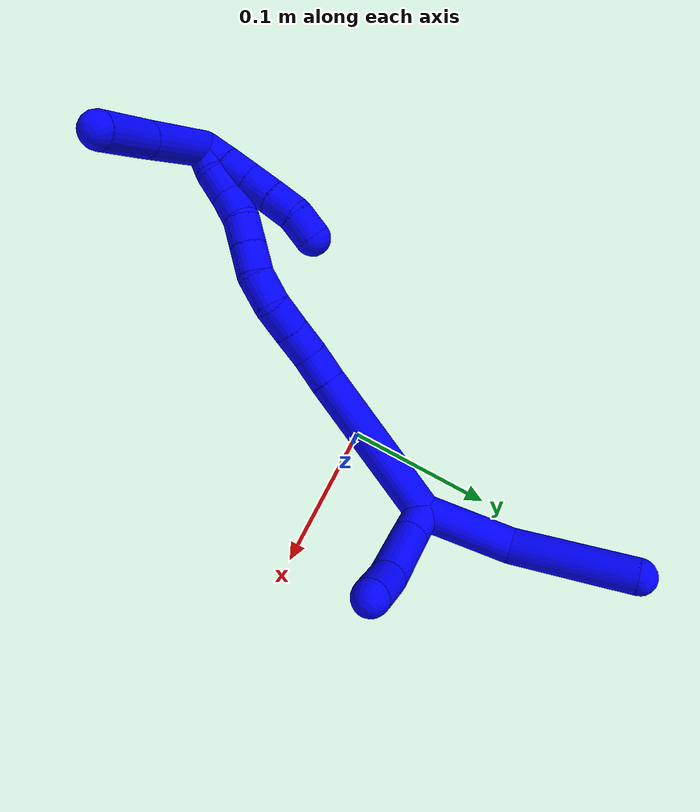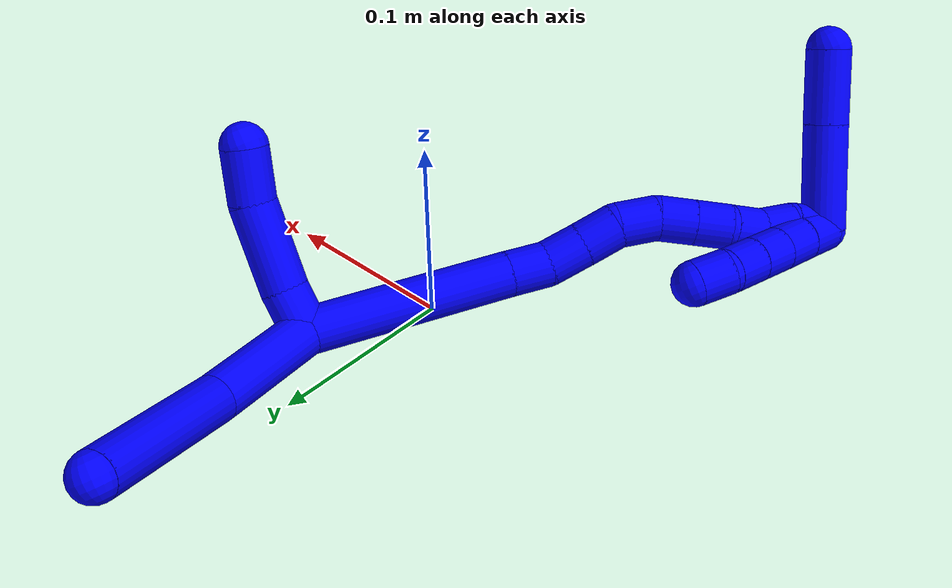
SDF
<sdf version="1.7">
 <world name="default">
  <plugin name="TubeGeneratorPlugin" filename="libtube_generator_plugin.so"/>
  <model name="photoneo_s_sensor">
   <static>1</static>
   <pose>0 0 2 1.57079 1.57079 3.14159</pose>
   <link name="link">
    <inertial><mass>0.1</mass></inertial>
    <sensor name="sensor" type="depth">
     <update_rate>30</update_rate>
     <camera>
      <horizontal_fov>1.22</horizontal_fov>
      <image><width>1920</width><height>1200</height><format>B8G8R8</format></image>
      <clip><near>0.1</near><far>4</far></clip>
      <depth_camera><output>points</output></depth_camera>
     </camera>
     <plugin name="camera_plugin" filename="libgazebo_ros_depth_camera.so">
      <baseline>0.2</baseline>
      <alwaysOn>1</alwaysOn>
      <updateRate>0.0</updateRate>
      <cameraName>camera_ir</cameraName>
      <imageTopicName>/camera/color/image_raw</imageTopicName>
      <cameraInfoTopicName>/camera/color/camera_info</cameraInfoTopicName>
      <depthImageTopicName>/camera/depth/image_raw</depthImageTopicName>
      <depthImageCameraInfoTopicName>/camera/depth/camera_info</depthImageCameraInfoTopicName>
      <pointCloudTopicName>/camera/depth/points</pointCloudTopicName>
      <frameName>fr_optical</frameName>
      <pointCloudCutoff>0.1</pointCloudCutoff>
      <pointCloudCutoffMax>2.0</pointCloudCutoffMax>
      <distortionK1>0</distortionK1>
      <distortionK2>0</distortionK2>
      <distortionK3>0</distortionK3>
      <distortionT1>0</distortionT1>
      <distortionT2>0</distortionT2>
      <CxPrime>0</CxPrime>
      <Cx>0</Cx>
      <Cy>0</Cy>
      <focalLength>0</focalLength>
      <hackBaseline>0</hackBaseline>
     </plugin>
    </sensor>
   </link>
  </model>
  <gravity>0 0 -9.8</gravity>
  <magnetic_field>6e-06 2.3e-05 -4.2e-05</magnetic_field>
  <atmosphere type="adiabatic"/>
  <physics name="default_physics" default="0" type="ode">
   <max_step_size>0.003</max_step_size>
   <real_time_factor>1</real_time_factor>
   <real_time_update_rate>1000</real_time_update_rate>
   <max_contacts>10000</max_contacts>
   <ode>
    <solver>
     <type>quick</type>
     <iters>100</iters>
     <sor>1.3</sor>
     <use_dynamic_moi_rescaling>0</use_dynamic_moi_rescaling>
    </solver>
    <constraints>
     <contact_max_correcting_vel>0</contact_max_correcting_vel>
     <contact_surface_layer>0.001</contact_surface_layer>
     <cfm>0</cfm>
     <erp>0.2</erp>
    </constraints>
   </ode>
  </physics>
  <scene><ambient>0.4 0.4 0.4 1</ambient><background>0.7 0.7 0.7 1</background><shadows>0</shadows></scene>
  <audio><device>default</device></audio>
  <spherical_coordinates>
   <surface_model>EARTH_WGS84</surface_model>
   <latitude_deg>0</latitude_deg>
   <longitude_deg>0</longitude_deg>
   <elevation>0</elevation>
   <heading_deg>0</heading_deg>
  </spherical_coordinates>
  <model name="bin">
   <static>1</static>
   <link name="bottom">
    <collision name="collision-bottom">
     <pose>0 0 -0.01 0 -0 0</pose>
     <geometry><box><size>0.8 0.6 0.02</size></box></geometry>
     <surface>
      <friction><ode><mu>100</mu><mu2>100</mu2></ode></friction>
      <contact><collide_bitmask>65535</collide_bitmask></contact>
     </surface>
    </collision>
   </link>
   <link name="west_wall">
    <collision name="collision-west_wall">
     <pose>-0.41 0 0.1 0 -0 0</pose>
     <geometry><box><size>0.02 0.6 0.2</size></box></geometry>
     <surface>
      <friction><ode><mu>100</mu><mu2>100</mu2></ode></friction>
      <contact><collide_bitmask>65535</collide_bitmask></contact>
     </surface>
    </collision>
   </link>
   <link name="east_wall">
    <collision name="collision-east_wall">
     <pose>0.41 0 0.1 0 -0 0</pose>
     <geometry><box><size>0.02 0.6 0.2</size></box></geometry>
     <surface>
      <friction><ode><mu>100</mu><mu2>100</mu2></ode></friction>
      <contact><collide_bitmask>65535</collide_bitmask></contact>
     </surface>
    </collision>
   </link>
   <link name="south_wall">
    <collision name="collision-south_wall">
     <pose>0 -0.31 0.1 0 -0 0</pose>
     <geometry><box><size>0.8 0.02 0.2</size></box></geometry>
     <surface>
      <friction><ode><mu>100</mu><mu2>100</mu2></ode></friction>
      <contact><collide_bitmask>65535</collide_bitmask></contact>
     </surface>
    </collision>
   </link>
   <link name="north_wall">
    <collision name="collision-north_wall">
     <pose>0 0.31 0.1 0 -0 0</pose>
     <geometry><box><size>0.8 0.02 0.2</size></box></geometry>
     <surface>
      <friction><ode><mu>100</mu><mu2>100</mu2></ode></friction>
      <contact><collide_bitmask>65535</collide_bitmask></contact>
     </surface>
    </collision>
   </link>
  </model>
  <model name="1">
   <static>0</static>
   <link name="1">
    <collision name="collision-cylinder-e_1_2_8">
     <pose>0.029472 0.011517 0.004921 -1.16701 1.16896 -0.823605</pose>
     <geometry><cylinder><radius>0.0125</radius><length>0.064046</length></cylinder></geometry>
     <surface>
      <friction><ode><mu>1.16</mu><mu2>1.16</mu2><slip1>0</slip1><slip2>0</slip2></ode></friction>
      <contact><ode><kp>1e+06</kp><kd>1</kd><max_vel>0</max_vel><min_depth>0.001</min_depth></ode></contact>
     </surface>
    </collision>
    <visual name="visual-cylinder-e_1_2_8">
     <pose>0.029472 0.011517 0.004921 -1.16701 1.16896 -0.823605</pose>
     <geometry><cylinder><radius>0.0125</radius><length>0.064046</length></cylinder></geometry>
     <material><ambient>0 0 1 1</ambient></material>
    </visual>
    <collision name="collision-cylinder-e_2_8_6">
     <pose>0.101749 0.026301 0.011886 -1.01152 1.48102 -0.937175</pose>
     <geometry><cylinder><radius>0.0125</radius><length>0.085954</length></cylinder></geometry>
     <surface>
      <friction><ode><mu>1.16</mu><mu2>1.16</mu2><slip1>0</slip1><slip2>0</slip2></ode></friction>
      <contact><ode><kp>1e+06</kp><kd>1</kd><max_vel>0</max_vel><min_depth>0.001</min_depth></ode></contact>
     </surface>
    </collision>
    <visual name="visual-cylinder-e_2_8_6">
     <pose>0.101749 0.026301 0.011886 -1.01152 1.48102 -0.937175</pose>
     <geometry><cylinder><radius>0.0125</radius><length>0.085954</length></cylinder></geometry>
     <material><ambient>0 0 1 1</ambient></material>
    </visual>
    <collision name="collision-cylinder-e_1_2_9">
     <pose>-0.000307 0.000976 -0.011998 -3.06039 -0.025484 0.607926</pose>
     <geometry><cylinder><radius>0.0125</radius><length>0.024083</length></cylinder></geometry>
     <surface>
      <friction><ode><mu>1.16</mu><mu2>1.16</mu2><slip1>0</slip1><slip2>0</slip2></ode></friction>
      <contact><ode><kp>1e+06</kp><kd>1</kd><max_vel>0</max_vel><min_depth>0.001</min_depth></ode></contact>
     </surface>
    </collision>
    <visual name="visual-cylinder-e_1_2_9">
     <pose>-0.000307 0.000976 -0.011998 -3.06039 -0.025484 0.607926</pose>
     <geometry><cylinder><radius>0.0125</radius><length>0.024083</length></cylinder></geometry>
     <material><ambient>0 0 1 1</ambient></material>
    </visual>
    <collision name="collision-cylinder-e_2_9_10">
     <pose>0.001594 -0.00124 -0.047315 3.00552 0.093508 1.20337</pose>
     <geometry><cylinder><radius>0.0125</radius><length>0.04728</length></cylinder></geometry>
     <surface>
      <friction><ode><mu>1.16</mu><mu2>1.16</mu2><slip1>0</slip1><slip2>0</slip2></ode></friction>
      <contact><ode><kp>1e+06</kp><kd>1</kd><max_vel>0</max_vel><min_depth>0.001</min_depth></ode></contact>
     </surface>
    </collision>
    <visual name="visual-cylinder-e_2_9_10">
     <pose>0.001594 -0.00124 -0.047315 3.00552 0.093508 1.20337</pose>
     <geometry><cylinder><radius>0.0125</radius><length>0.04728</length></cylinder></geometry>
     <material><ambient>0 0 1 1</ambient></material>
    </visual>
    <collision name="collision-cylinder-e_3_10_5">
     <pose>0.004698 -0.009373 -0.084043 2.78858 0.062701 0.348099</pose>
     <geometry><cylinder><radius>0.0125</radius><length>0.028637</length></cylinder></geometry>
     <surface>
      <friction><ode><mu>1.16</mu><mu2>1.16</mu2><slip1>0</slip1><slip2>0</slip2></ode></friction>
      <contact><ode><kp>1e+06</kp><kd>1</kd><max_vel>0</max_vel><min_depth>0.001</min_depth></ode></contact>
     </surface>
    </collision>
    <visual name="visual-cylinder-e_3_10_5">
     <pose>0.004698 -0.009373 -0.084043 2.78858 0.062701 0.348099</pose>
     <geometry><cylinder><radius>0.0125</radius><length>0.028637</length></cylinder></geometry>
     <material><ambient>0 0 1 1</ambient></material>
    </visual>
    <collision name="collision-cylinder-e_1_2_11">
     <pose>-0.035245 -0.042109 0.008005 1.38294 -0.688163 -0.576731</pose>
     <geometry><cylinder><radius>0.0125</radius><length>0.110986</length></cylinder></geometry>
     <surface>
      <friction><ode><mu>1.16</mu><mu2>1.16</mu2><slip1>0</slip1><slip2>0</slip2></ode></friction>
      <contact><ode><kp>1e+06</kp><kd>1</kd><max_vel>0</max_vel><min_depth>0.001</min_depth></ode></contact>
     </surface>
    </collision>
    <visual name="visual-cylinder-e_1_2_11">
     <pose>-0.035245 -0.042109 0.008005 1.38294 -0.688163 -0.576731</pose>
     <geometry><cylinder><radius>0.0125</radius><length>0.110986</length></cylinder></geometry>
     <material><ambient>0 0 1 1</ambient></material>
    </visual>
    <collision name="collision-cylinder-e_2_11_12">
     <pose>-0.077303 -0.092903 0.017852 1.36184 -0.654611 -0.536866</pose>
     <geometry><cylinder><radius>0.0125</radius><length>0.022381</length></cylinder></geometry>
     <surface>
      <friction><ode><mu>1.16</mu><mu2>1.16</mu2><slip1>0</slip1><slip2>0</slip2></ode></friction>
      <contact><ode><kp>1e+06</kp><kd>1</kd><max_vel>0</max_vel><min_depth>0.001</min_depth></ode></contact>
     </surface>
    </collision>
    <visual name="visual-cylinder-e_2_11_12">
     <pose>-0.077303 -0.092903 0.017852 1.36184 -0.654611 -0.536866</pose>
     <geometry><cylinder><radius>0.0125</radius><length>0.022381</length></cylinder></geometry>
     <material><ambient>0 0 1 1</ambient></material>
    </visual>
    <collision name="collision-cylinder-e_3_12_13">
     <pose>-0.089566 -0.110848 0.018807 1.66614 -0.529944 -0.580233</pose>
     <geometry><cylinder><radius>0.0125</radius><length>0.021562</length></cylinder></geometry>
     <surface>
      <friction><ode><mu>1.16</mu><mu2>1.16</mu2><slip1>0</slip1><slip2>0</slip2></ode></friction>
      <contact><ode><kp>1e+06</kp><kd>1</kd><max_vel>0</max_vel><min_depth>0.001</min_depth></ode></contact>
     </surface>
    </collision>
    <visual name="visual-cylinder-e_3_12_13">
     <pose>-0.089566 -0.110848 0.018807 1.66614 -0.529944 -0.580233</pose>
     <geometry><cylinder><radius>0.0125</radius><length>0.021562</length></cylinder></geometry>
     <material><ambient>0 0 1 1</ambient></material>
    </visual>
    <collision name="collision-cylinder-e_4_13_14">
     <pose>-0.10009 -0.129554 0.016834 1.68541 -0.490205 -0.547092</pose>
     <geometry><cylinder><radius>0.0125</radius><length>0.021556</length></cylinder></geometry>
     <surface>
      <friction><ode><mu>1.16</mu><mu2>1.16</mu2><slip1>0</slip1><slip2>0</slip2></ode></friction>
      <contact><ode><kp>1e+06</kp><kd>1</kd><max_vel>0</max_vel><min_depth>0.001</min_depth></ode></contact>
     </surface>
    </collision>
    <visual name="visual-cylinder-e_4_13_14">
     <pose>-0.10009 -0.129554 0.016834 1.68541 -0.490205 -0.547092</pose>
     <geometry><cylinder><radius>0.0125</radius><length>0.021556</length></cylinder></geometry>
     <material><ambient>0 0 1 1</ambient></material>
    </visual>
    <collision name="collision-cylinder-e_5_14_15">
     <pose>-0.111352 -0.148252 0.018298 1.30176 -0.57263 -0.441138</pose>
     <geometry><cylinder><radius>0.0125</radius><length>0.022838</length></cylinder></geometry>
     <surface>
      <friction><ode><mu>1.16</mu><mu2>1.16</mu2><slip1>0</slip1><slip2>0</slip2></ode></friction>
      <contact><ode><kp>1e+06</kp><kd>1</kd><max_vel>0</max_vel><min_depth>0.001</min_depth></ode></contact>
     </surface>
    </collision>
    <visual name="visual-cylinder-e_5_14_15">
     <pose>-0.111352 -0.148252 0.018298 1.30176 -0.57263 -0.441138</pose>
     <geometry><cylinder><radius>0.0125</radius><length>0.022838</length></cylinder></geometry>
     <material><ambient>0 0 1 1</ambient></material>
    </visual>
    <collision name="collision-cylinder-e_6_15_16">
     <pose>-0.122018 -0.165199 0.026009 0.980098 -0.450303 -0.243153</pose>
     <geometry><cylinder><radius>0.0125</radius><length>0.02058</length></cylinder></geometry>
     <surface>
      <friction><ode><mu>1.16</mu><mu2>1.16</mu2><slip1>0</slip1><slip2>0</slip2></ode></friction>
      <contact><ode><kp>1e+06</kp><kd>1</kd><max_vel>0</max_vel><min_depth>0.001</min_depth></ode></contact>
     </surface>
    </collision>
    <visual name="visual-cylinder-e_6_15_16">
     <pose>-0.122018 -0.165199 0.026009 0.980098 -0.450303 -0.243153</pose>
     <geometry><cylinder><radius>0.0125</radius><length>0.02058</length></cylinder></geometry>
     <material><ambient>0 0 1 1</ambient></material>
    </visual>
    <collision name="collision-cylinder-e_7_16_17">
     <pose>-0.130814 -0.180381 0.03624 0.975407 -0.445456 -0.239129</pose>
     <geometry><cylinder><radius>0.0125</radius><length>0.020044</length></cylinder></geometry>
     <surface>
      <friction><ode><mu>1.16</mu><mu2>1.16</mu2><slip1>0</slip1><slip2>0</slip2></ode></friction>
      <contact><ode><kp>1e+06</kp><kd>1</kd><max_vel>0</max_vel><min_depth>0.001</min_depth></ode></contact>
     </surface>
    </collision>
    <visual name="visual-cylinder-e_7_16_17">
     <pose>-0.130814 -0.180381 0.03624 0.975407 -0.445456 -0.239129</pose>
     <geometry><cylinder><radius>0.0125</radius><length>0.020044</length></cylinder></geometry>
     <material><ambient>0 0 1 1</ambient></material>
    </visual>
    <collision name="collision-cylinder-e_8_17_18">
     <pose>-0.141779 -0.193617 0.046101 0.876214 -0.726333 -0.352366</pose>
     <geometry><cylinder><radius>0.0125</radius><length>0.020016</length></cylinder></geometry>
     <surface>
      <friction><ode><mu>1.16</mu><mu2>1.16</mu2><slip1>0</slip1><slip2>0</slip2></ode></friction>
      <contact><ode><kp>1e+06</kp><kd>1</kd><max_vel>0</max_vel><min_depth>0.001</min_depth></ode></contact>
     </surface>
    </collision>
    <visual name="visual-cylinder-e_8_17_18">
     <pose>-0.141779 -0.193617 0.046101 0.876214 -0.726333 -0.352366</pose>
     <geometry><cylinder><radius>0.0125</radius><length>0.020016</length></cylinder></geometry>
     <material><ambient>0 0 1 1</ambient></material>
    </visual>
    <collision name="collision-cylinder-e_9_18_19">
     <pose>-0.15457 -0.206925 0.053229 1.27083 -0.660273 -0.495043</pose>
     <geometry><cylinder><radius>0.0125</radius><length>0.020035</length></cylinder></geometry>
     <surface>
      <friction><ode><mu>1.16</mu><mu2>1.16</mu2><slip1>0</slip1><slip2>0</slip2></ode></friction>
      <contact><ode><kp>1e+06</kp><kd>1</kd><max_vel>0</max_vel><min_depth>0.001</min_depth></ode></contact>
     </surface>
    </collision>
    <visual name="visual-cylinder-e_9_18_19">
     <pose>-0.15457 -0.206925 0.053229 1.27083 -0.660273 -0.495043</pose>
     <geometry><cylinder><radius>0.0125</radius><length>0.020035</length></cylinder></geometry>
     <material><ambient>0 0 1 1</ambient></material>
    </visual>
    <collision name="collision-cylinder-e_10_19_1">
     <pose>-0.166531 -0.221009 0.060424 0.930858 -0.620804 -0.319456</pose>
     <geometry><cylinder><radius>0.0125</radius><length>0.020002</length></cylinder></geometry>
     <surface>
      <friction><ode><mu>1.16</mu><mu2>1.16</mu2><slip1>0</slip1><slip2>0</slip2></ode></friction>
      <contact><ode><kp>1e+06</kp><kd>1</kd><max_vel>0</max_vel><min_depth>0.001</min_depth></ode></contact>
     </surface>
    </collision>
    <visual name="visual-cylinder-e_10_19_1">
     <pose>-0.166531 -0.221009 0.060424 0.930858 -0.620804 -0.319456</pose>
     <geometry><cylinder><radius>0.0125</radius><length>0.020002</length></cylinder></geometry>
     <material><ambient>0 0 1 1</ambient></material>
    </visual>
    <collision name="collision-cylinder-e_1_1_20">
     <pose>-0.173921 -0.239018 0.038218 2.7403 -0.053432 -0.261286</pose>
     <geometry><cylinder><radius>0.0125</radius><length>0.058883</length></cylinder></geometry>
     <surface>
      <friction><ode><mu>1.16</mu><mu2>1.16</mu2><slip1>0</slip1><slip2>0</slip2></ode></friction>
      <contact><ode><kp>1e+06</kp><kd>1</kd><max_vel>0</max_vel><min_depth>0.001</min_depth></ode></contact>
     </surface>
    </collision>
    <visual name="visual-cylinder-e_1_1_20">
     <pose>-0.173921 -0.239018 0.038218 2.7403 -0.053432 -0.261286</pose>
     <geometry><cylinder><radius>0.0125</radius><length>0.058883</length></cylinder></geometry>
     <material><ambient>0 0 1 1</ambient></material>
    </visual>
    <collision name="collision-cylinder-e_2_20_4">
     <pose>-0.17643 -0.258794 -0.007634 2.72593 -0.04558 -0.215348</pose>
     <geometry><cylinder><radius>0.0125</radius><length>0.041117</length></cylinder></geometry>
     <surface>
      <friction><ode><mu>1.16</mu><mu2>1.16</mu2><slip1>0</slip1><slip2>0</slip2></ode></friction>
      <contact><ode><kp>1e+06</kp><kd>1</kd><max_vel>0</max_vel><min_depth>0.001</min_depth></ode></contact>
     </surface>
    </collision>
    <visual name="visual-cylinder-e_2_20_4">
     <pose>-0.17643 -0.258794 -0.007634 2.72593 -0.04558 -0.215348</pose>
     <geometry><cylinder><radius>0.0125</radius><length>0.041117</length></cylinder></geometry>
     <material><ambient>0 0 1 1</ambient></material>
    </visual>
    <collision name="collision-cylinder-e_1_1_21">
     <pose>-0.163681 -0.222604 0.064532 -1.72168 1.04873 -1.18469</pose>
     <geometry><cylinder><radius>0.0125</radius><length>0.02</length></cylinder></geometry>
     <surface>
      <friction><ode><mu>1.16</mu><mu2>1.16</mu2><slip1>0</slip1><slip2>0</slip2></ode></friction>
      <contact><ode><kp>1e+06</kp><kd>1</kd><max_vel>0</max_vel><min_depth>0.001</min_depth></ode></contact>
     </surface>
    </collision>
    <visual name="visual-cylinder-e_1_1_21">
     <pose>-0.163681 -0.222604 0.064532 -1.72168 1.04873 -1.18469</pose>
     <geometry><cylinder><radius>0.0125</radius><length>0.02</length></cylinder></geometry>
     <material><ambient>0 0 1 1</ambient></material>
    </visual>
    <collision name="collision-cylinder-e_2_21_22">
     <pose>-0.146491 -0.212476 0.063185 -1.68535 1.0201 -1.12076</pose>
     <geometry><cylinder><radius>0.0125</radius><length>0.02</length></cylinder></geometry>
     <surface>
      <friction><ode><mu>1.16</mu><mu2>1.16</mu2><slip1>0</slip1><slip2>0</slip2></ode></friction>
      <contact><ode><kp>1e+06</kp><kd>1</kd><max_vel>0</max_vel><min_depth>0.001</min_depth></ode></contact>
     </surface>
    </collision>
    <visual name="visual-cylinder-e_2_21_22">
     <pose>-0.146491 -0.212476 0.063185 -1.68535 1.0201 -1.12076</pose>
     <geometry><cylinder><radius>0.0125</radius><length>0.02</length></cylinder></geometry>
     <material><ambient>0 0 1 1</ambient></material>
    </visual>
    <collision name="collision-cylinder-e_3_22_23">
     <pose>-0.129427 -0.202133 0.061833 -1.71631 1.02411 -1.15336</pose>
     <geometry><cylinder><radius>0.0125</radius><length>0.02</length></cylinder></geometry>
     <surface>
      <friction><ode><mu>1.16</mu><mu2>1.16</mu2><slip1>0</slip1><slip2>0</slip2></ode></friction>
      <contact><ode><kp>1e+06</kp><kd>1</kd><max_vel>0</max_vel><min_depth>0.001</min_depth></ode></contact>
     </surface>
    </collision>
    <visual name="visual-cylinder-e_3_22_23">
     <pose>-0.129427 -0.202133 0.061833 -1.71631 1.02411 -1.15336</pose>
     <geometry><cylinder><radius>0.0125</radius><length>0.02</length></cylinder></geometry>
     <material><ambient>0 0 1 1</ambient></material>
    </visual>
    <collision name="collision-cylinder-e_4_23_24">
     <pose>-0.112437 -0.191688 0.060344 -1.70858 1.00604 -1.12694</pose>
     <geometry><cylinder><radius>0.0125</radius><length>0.02</length></cylinder></geometry>
     <surface>
      <friction><ode><mu>1.16</mu><mu2>1.16</mu2><slip1>0</slip1><slip2>0</slip2></ode></friction>
      <contact><ode><kp>1e+06</kp><kd>1</kd><max_vel>0</max_vel><min_depth>0.001</min_depth></ode></contact>
     </surface>
    </collision>
    <visual name="visual-cylinder-e_4_23_24">
     <pose>-0.112437 -0.191688 0.060344 -1.70858 1.00604 -1.12694</pose>
     <geometry><cylinder><radius>0.0125</radius><length>0.02</length></cylinder></geometry>
     <material><ambient>0 0 1 1</ambient></material>
    </visual>
    <collision name="collision-cylinder-e_5_24_3">
     <pose>-0.097705 -0.178659 0.058731 -1.68391 0.679705 -0.754127</pose>
     <geometry><cylinder><radius>0.0125</radius><length>0.02</length></cylinder></geometry>
     <surface>
      <friction><ode><mu>1.16</mu><mu2>1.16</mu2><slip1>0</slip1><slip2>0</slip2></ode></friction>
      <contact><ode><kp>1e+06</kp><kd>1</kd><max_vel>0</max_vel><min_depth>0.001</min_depth></ode></contact>
     </surface>
    </collision>
    <visual name="visual-cylinder-e_5_24_3">
     <pose>-0.097705 -0.178659 0.058731 -1.68391 0.679705 -0.754127</pose>
     <geometry><cylinder><radius>0.0125</radius><length>0.02</length></cylinder></geometry>
     <material><ambient>0 0 1 1</ambient></material>
    </visual>
    <collision name="collision-sphere-3">
     <pose>-0.091419 -0.170931 0.057853 0 -0 0</pose>
     <geometry><sphere><radius>0.0125</radius></sphere></geometry>
     <surface>
      <friction><ode><mu>1.16</mu><mu2>1.16</mu2><slip1>0</slip1><slip2>0</slip2></ode></friction>
      <contact><ode><kp>1e+06</kp><kd>1</kd><max_vel>0</max_vel><min_depth>0.001</min_depth></ode></contact>
     </surface>
    </collision>
    <visual name="visual-sphere-3">
     <pose>-0.091419 -0.170931 0.057853 0 -0 0</pose>
     <geometry><sphere><radius>0.0125</radius></sphere></geometry>
     <material><ambient>0 0 1 1</ambient></material>
    </visual>
    <collision name="collision-sphere-24">
     <pose>-0.10399 -0.186387 0.059609 0 -0 0</pose>
     <geometry><sphere><radius>0.0125</radius></sphere></geometry>
     <surface>
      <friction><ode><mu>1.16</mu><mu2>1.16</mu2><slip1>0</slip1><slip2>0</slip2></ode></friction>
      <contact><ode><kp>1e+06</kp><kd>1</kd><max_vel>0</max_vel><min_depth>0.001</min_depth></ode></contact>
     </surface>
    </collision>
    <visual name="visual-sphere-24">
     <pose>-0.10399 -0.186387 0.059609 0 -0 0</pose>
     <geometry><sphere><radius>0.0125</radius></sphere></geometry>
     <material><ambient>0 0 1 1</ambient></material>
    </visual>
    <collision name="collision-sphere-23">
     <pose>-0.120885 -0.19699 0.061079 0 -0 0</pose>
     <geometry><sphere><radius>0.0125</radius></sphere></geometry>
     <surface>
      <friction><ode><mu>1.16</mu><mu2>1.16</mu2><slip1>0</slip1><slip2>0</slip2></ode></friction>
      <contact><ode><kp>1e+06</kp><kd>1</kd><max_vel>0</max_vel><min_depth>0.001</min_depth></ode></contact>
     </surface>
    </collision>
    <visual name="visual-sphere-23">
     <pose>-0.120885 -0.19699 0.061079 0 -0 0</pose>
     <geometry><sphere><radius>0.0125</radius></sphere></geometry>
     <material><ambient>0 0 1 1</ambient></material>
    </visual>
    <collision name="collision-sphere-22">
     <pose>-0.13797 -0.207277 0.062587 0 -0 0</pose>
     <geometry><sphere><radius>0.0125</radius></sphere></geometry>
     <surface>
      <friction><ode><mu>1.16</mu><mu2>1.16</mu2><slip1>0</slip1><slip2>0</slip2></ode></friction>
      <contact><ode><kp>1e+06</kp><kd>1</kd><max_vel>0</max_vel><min_depth>0.001</min_depth></ode></contact>
     </surface>
    </collision>
    <visual name="visual-sphere-22">
     <pose>-0.13797 -0.207277 0.062587 0 -0 0</pose>
     <geometry><sphere><radius>0.0125</radius></sphere></geometry>
     <material><ambient>0 0 1 1</ambient></material>
    </visual>
    <collision name="collision-sphere-21">
     <pose>-0.155013 -0.217674 0.063783 0 -0 0</pose>
     <geometry><sphere><radius>0.0125</radius></sphere></geometry>
     <surface>
      <friction><ode><mu>1.16</mu><mu2>1.16</mu2><slip1>0</slip1><slip2>0</slip2></ode></friction>
      <contact><ode><kp>1e+06</kp><kd>1</kd><max_vel>0</max_vel><min_depth>0.001</min_depth></ode></contact>
     </surface>
    </collision>
    <visual name="visual-sphere-21">
     <pose>-0.155013 -0.217674 0.063783 0 -0 0</pose>
     <geometry><sphere><radius>0.0125</radius></sphere></geometry>
     <material><ambient>0 0 1 1</ambient></material>
    </visual>
    <collision name="collision-sphere-4">
     <pose>-0.177367 -0.267087 -0.026423 0 -0 0</pose>
     <geometry><sphere><radius>0.0125</radius></sphere></geometry>
     <surface>
      <friction><ode><mu>1.16</mu><mu2>1.16</mu2><slip1>0</slip1><slip2>0</slip2></ode></friction>
      <contact><ode><kp>1e+06</kp><kd>1</kd><max_vel>0</max_vel><min_depth>0.001</min_depth></ode></contact>
     </surface>
    </collision>
    <visual name="visual-sphere-4">
     <pose>-0.177367 -0.267087 -0.026423 0 -0 0</pose>
     <geometry><sphere><radius>0.0125</radius></sphere></geometry>
     <material><ambient>0 0 1 1</ambient></material>
    </visual>
    <collision name="collision-sphere-20">
     <pose>-0.175493 -0.250501 0.011154 0 -0 0</pose>
     <geometry><sphere><radius>0.0125</radius></sphere></geometry>
     <surface>
      <friction><ode><mu>1.16</mu><mu2>1.16</mu2><slip1>0</slip1><slip2>0</slip2></ode></friction>
      <contact><ode><kp>1e+06</kp><kd>1</kd><max_vel>0</max_vel><min_depth>0.001</min_depth></ode></contact>
     </surface>
    </collision>
    <visual name="visual-sphere-20">
     <pose>-0.175493 -0.250501 0.011154 0 -0 0</pose>
     <geometry><sphere><radius>0.0125</radius></sphere></geometry>
     <material><ambient>0 0 1 1</ambient></material>
    </visual>
    <collision name="collision-sphere-5">
     <pose>0.005595 -0.014314 -0.097453 0 -0 0</pose>
     <geometry><sphere><radius>0.0125</radius></sphere></geometry>
     <surface>
      <friction><ode><mu>1.16</mu><mu2>1.16</mu2><slip1>0</slip1><slip2>0</slip2></ode></friction>
      <contact><ode><kp>1e+06</kp><kd>1</kd><max_vel>0</max_vel><min_depth>0.001</min_depth></ode></contact>
     </surface>
    </collision>
    <visual name="visual-sphere-5">
     <pose>0.005595 -0.014314 -0.097453 0 -0 0</pose>
     <geometry><sphere><radius>0.0125</radius></sphere></geometry>
     <material><ambient>0 0 1 1</ambient></material>
    </visual>
    <collision name="collision-sphere-10">
     <pose>0.003801 -0.004433 -0.070634 0 -0 0</pose>
     <geometry><sphere><radius>0.0125</radius></sphere></geometry>
     <surface>
      <friction><ode><mu>1.16</mu><mu2>1.16</mu2><slip1>0</slip1><slip2>0</slip2></ode></friction>
      <contact><ode><kp>1e+06</kp><kd>1</kd><max_vel>0</max_vel><min_depth>0.001</min_depth></ode></contact>
     </surface>
    </collision>
    <visual name="visual-sphere-10">
     <pose>0.003801 -0.004433 -0.070634 0 -0 0</pose>
     <geometry><sphere><radius>0.0125</radius></sphere></geometry>
     <material><ambient>0 0 1 1</ambient></material>
    </visual>
    <collision name="collision-sphere-6">
     <pose>0.144552 0.029567 0.013931 0 -0 0</pose>
     <geometry><sphere><radius>0.0125</radius></sphere></geometry>
     <surface>
      <friction><ode><mu>1.16</mu><mu2>1.16</mu2><slip1>0</slip1><slip2>0</slip2></ode></friction>
      <contact><ode><kp>1e+06</kp><kd>1</kd><max_vel>0</max_vel><min_depth>0.001</min_depth></ode></contact>
     </surface>
    </collision>
    <visual name="visual-sphere-6">
     <pose>0.144552 0.029567 0.013931 0 -0 0</pose>
     <geometry><sphere><radius>0.0125</radius></sphere></geometry>
     <material><ambient>0 0 1 1</ambient></material>
    </visual>
    <collision name="collision-sphere-9">
     <pose>-0.000614 0.001953 -0.023996 0 -0 0</pose>
     <geometry><sphere><radius>0.0125</radius></sphere></geometry>
     <surface>
      <friction><ode><mu>1.16</mu><mu2>1.16</mu2><slip1>0</slip1><slip2>0</slip2></ode></friction>
      <contact><ode><kp>1e+06</kp><kd>1</kd><max_vel>0</max_vel><min_depth>0.001</min_depth></ode></contact>
     </surface>
    </collision>
    <visual name="visual-sphere-9">
     <pose>-0.000614 0.001953 -0.023996 0 -0 0</pose>
     <geometry><sphere><radius>0.0125</radius></sphere></geometry>
     <material><ambient>0 0 1 1</ambient></material>
    </visual>
    <collision name="collision-sphere-2">
     <geometry><sphere><radius>0.0125</radius></sphere></geometry>
     <surface>
      <friction><ode><mu>1.16</mu><mu2>1.16</mu2><slip1>0</slip1><slip2>0</slip2></ode></friction>
      <contact><ode><kp>1e+06</kp><kd>1</kd><max_vel>0</max_vel><min_depth>0.001</min_depth></ode></contact>
     </surface>
    </collision>
    <visual name="visual-sphere-2">
     <geometry><sphere><radius>0.0125</radius></sphere></geometry>
     <material><ambient>0 0 1 1</ambient></material>
    </visual>
    <collision name="collision-sphere-19">
     <pose>-0.160714 -0.214484 0.055566 0 -0 0</pose>
     <geometry><sphere><radius>0.0125</radius></sphere></geometry>
     <surface>
      <friction><ode><mu>1.16</mu><mu2>1.16</mu2><slip1>0</slip1><slip2>0</slip2></ode></friction>
      <contact><ode><kp>1e+06</kp><kd>1</kd><max_vel>0</max_vel><min_depth>0.001</min_depth></ode></contact>
     </surface>
    </collision>
    <visual name="visual-sphere-19">
     <pose>-0.160714 -0.214484 0.055566 0 -0 0</pose>
     <geometry><sphere><radius>0.0125</radius></sphere></geometry>
     <material><ambient>0 0 1 1</ambient></material>
    </visual>
    <collision name="collision-sphere-8">
     <pose>0.058945 0.023035 0.009842 0 -0 0</pose>
     <geometry><sphere><radius>0.0125</radius></sphere></geometry>
     <surface>
      <friction><ode><mu>1.16</mu><mu2>1.16</mu2><slip1>0</slip1><slip2>0</slip2></ode></friction>
      <contact><ode><kp>1e+06</kp><kd>1</kd><max_vel>0</max_vel><min_depth>0.001</min_depth></ode></contact>
     </surface>
    </collision>
    <visual name="visual-sphere-8">
     <pose>0.058945 0.023035 0.009842 0 -0 0</pose>
     <geometry><sphere><radius>0.0125</radius></sphere></geometry>
     <material><ambient>0 0 1 1</ambient></material>
    </visual>
    <collision name="collision-sphere-11">
     <pose>-0.070489 -0.084219 0.01601 0 -0 0</pose>
     <geometry><sphere><radius>0.0125</radius></sphere></geometry>
     <surface>
      <friction><ode><mu>1.16</mu><mu2>1.16</mu2><slip1>0</slip1><slip2>0</slip2></ode></friction>
      <contact><ode><kp>1e+06</kp><kd>1</kd><max_vel>0</max_vel><min_depth>0.001</min_depth></ode></contact>
     </surface>
    </collision>
    <visual name="visual-sphere-11">
     <pose>-0.070489 -0.084219 0.01601 0 -0 0</pose>
     <geometry><sphere><radius>0.0125</radius></sphere></geometry>
     <material><ambient>0 0 1 1</ambient></material>
    </visual>
    <collision name="collision-sphere-12">
     <pose>-0.084116 -0.101587 0.019693 0 -0 0</pose>
     <geometry><sphere><radius>0.0125</radius></sphere></geometry>
     <surface>
      <friction><ode><mu>1.16</mu><mu2>1.16</mu2><slip1>0</slip1><slip2>0</slip2></ode></friction>
      <contact><ode><kp>1e+06</kp><kd>1</kd><max_vel>0</max_vel><min_depth>0.001</min_depth></ode></contact>
     </surface>
    </collision>
    <visual name="visual-sphere-12">
     <pose>-0.084116 -0.101587 0.019693 0 -0 0</pose>
     <geometry><sphere><radius>0.0125</radius></sphere></geometry>
     <material><ambient>0 0 1 1</ambient></material>
    </visual>
    <collision name="collision-sphere-13">
     <pose>-0.095016 -0.120108 0.017922 0 -0 0</pose>
     <geometry><sphere><radius>0.0125</radius></sphere></geometry>
     <surface>
      <friction><ode><mu>1.16</mu><mu2>1.16</mu2><slip1>0</slip1><slip2>0</slip2></ode></friction>
      <contact><ode><kp>1e+06</kp><kd>1</kd><max_vel>0</max_vel><min_depth>0.001</min_depth></ode></contact>
     </surface>
    </collision>
    <visual name="visual-sphere-13">
     <pose>-0.095016 -0.120108 0.017922 0 -0 0</pose>
     <geometry><sphere><radius>0.0125</radius></sphere></geometry>
     <material><ambient>0 0 1 1</ambient></material>
    </visual>
    <collision name="collision-sphere-14">
     <pose>-0.105164 -0.139 0.015747 0 -0 0</pose>
     <geometry><sphere><radius>0.0125</radius></sphere></geometry>
     <surface>
      <friction><ode><mu>1.16</mu><mu2>1.16</mu2><slip1>0</slip1><slip2>0</slip2></ode></friction>
      <contact><ode><kp>1e+06</kp><kd>1</kd><max_vel>0</max_vel><min_depth>0.001</min_depth></ode></contact>
     </surface>
    </collision>
    <visual name="visual-sphere-14">
     <pose>-0.105164 -0.139 0.015747 0 -0 0</pose>
     <geometry><sphere><radius>0.0125</radius></sphere></geometry>
     <material><ambient>0 0 1 1</ambient></material>
    </visual>
    <collision name="collision-sphere-15">
     <pose>-0.117539 -0.157505 0.020849 0 -0 0</pose>
     <geometry><sphere><radius>0.0125</radius></sphere></geometry>
     <surface>
      <friction><ode><mu>1.16</mu><mu2>1.16</mu2><slip1>0</slip1><slip2>0</slip2></ode></friction>
      <contact><ode><kp>1e+06</kp><kd>1</kd><max_vel>0</max_vel><min_depth>0.001</min_depth></ode></contact>
     </surface>
    </collision>
    <visual name="visual-sphere-15">
     <pose>-0.117539 -0.157505 0.020849 0 -0 0</pose>
     <geometry><sphere><radius>0.0125</radius></sphere></geometry>
     <material><ambient>0 0 1 1</ambient></material>
    </visual>
    <collision name="collision-sphere-16">
     <pose>-0.126496 -0.172893 0.031168 0 -0 0</pose>
     <geometry><sphere><radius>0.0125</radius></sphere></geometry>
     <surface>
      <friction><ode><mu>1.16</mu><mu2>1.16</mu2><slip1>0</slip1><slip2>0</slip2></ode></friction>
      <contact><ode><kp>1e+06</kp><kd>1</kd><max_vel>0</max_vel><min_depth>0.001</min_depth></ode></contact>
     </surface>
    </collision>
    <visual name="visual-sphere-16">
     <pose>-0.126496 -0.172893 0.031168 0 -0 0</pose>
     <geometry><sphere><radius>0.0125</radius></sphere></geometry>
     <material><ambient>0 0 1 1</ambient></material>
    </visual>
    <collision name="collision-sphere-17">
     <pose>-0.135132 -0.187869 0.041312 0 -0 0</pose>
     <geometry><sphere><radius>0.0125</radius></sphere></geometry>
     <surface>
      <friction><ode><mu>1.16</mu><mu2>1.16</mu2><slip1>0</slip1><slip2>0</slip2></ode></friction>
      <contact><ode><kp>1e+06</kp><kd>1</kd><max_vel>0</max_vel><min_depth>0.001</min_depth></ode></contact>
     </surface>
    </collision>
    <visual name="visual-sphere-17">
     <pose>-0.135132 -0.187869 0.041312 0 -0 0</pose>
     <geometry><sphere><radius>0.0125</radius></sphere></geometry>
     <material><ambient>0 0 1 1</ambient></material>
    </visual>
    <collision name="collision-sphere-18">
     <pose>-0.148426 -0.199366 0.050891 0 -0 0</pose>
     <geometry><sphere><radius>0.0125</radius></sphere></geometry>
     <surface>
      <friction><ode><mu>1.16</mu><mu2>1.16</mu2><slip1>0</slip1><slip2>0</slip2></ode></friction>
      <contact><ode><kp>1e+06</kp><kd>1</kd><max_vel>0</max_vel><min_depth>0.001</min_depth></ode></contact>
     </surface>
    </collision>
    <visual name="visual-sphere-18">
     <pose>-0.148426 -0.199366 0.050891 0 -0 0</pose>
     <geometry><sphere><radius>0.0125</radius></sphere></geometry>
     <material><ambient>0 0 1 1</ambient></material>
    </visual>
    <collision name="collision-sphere-1">
     <pose>-0.172349 -0.227534 0.065282 0 -0 0</pose>
     <geometry><sphere><radius>0.0125</radius></sphere></geometry>
     <surface>
      <friction><ode><mu>1.16</mu><mu2>1.16</mu2><slip1>0</slip1><slip2>0</slip2></ode></friction>
      <contact><ode><kp>1e+06</kp><kd>1</kd><max_vel>0</max_vel><min_depth>0.001</min_depth></ode></contact>
     </surface>
    </collision>
    <visual name="visual-sphere-1">
     <pose>-0.172349 -0.227534 0.065282 0 -0 0</pose>
     <geometry><sphere><radius>0.0125</radius></sphere></geometry>
     <material><ambient>0 0 1 1</ambient></material>
    </visual>
    <inertial>
     <pose>-0.061769 -0.1026 0.015262 0 -0 0</pose>
     <mass>0.75</mass>
     <inertia><ixx>7.4e-05</ixx><ixy>0</ixy><ixz>0</ixz><iyy>3.7e-05</iyy><iyz>0</iyz><izz>8.6e-05</izz></inertia>
    </inertial>
   </link>
   <pose>0.02479 0.065388 0.011534 -2.55163 -0.392962 1.91122</pose>
  </model>
 </world>
</sdf>
